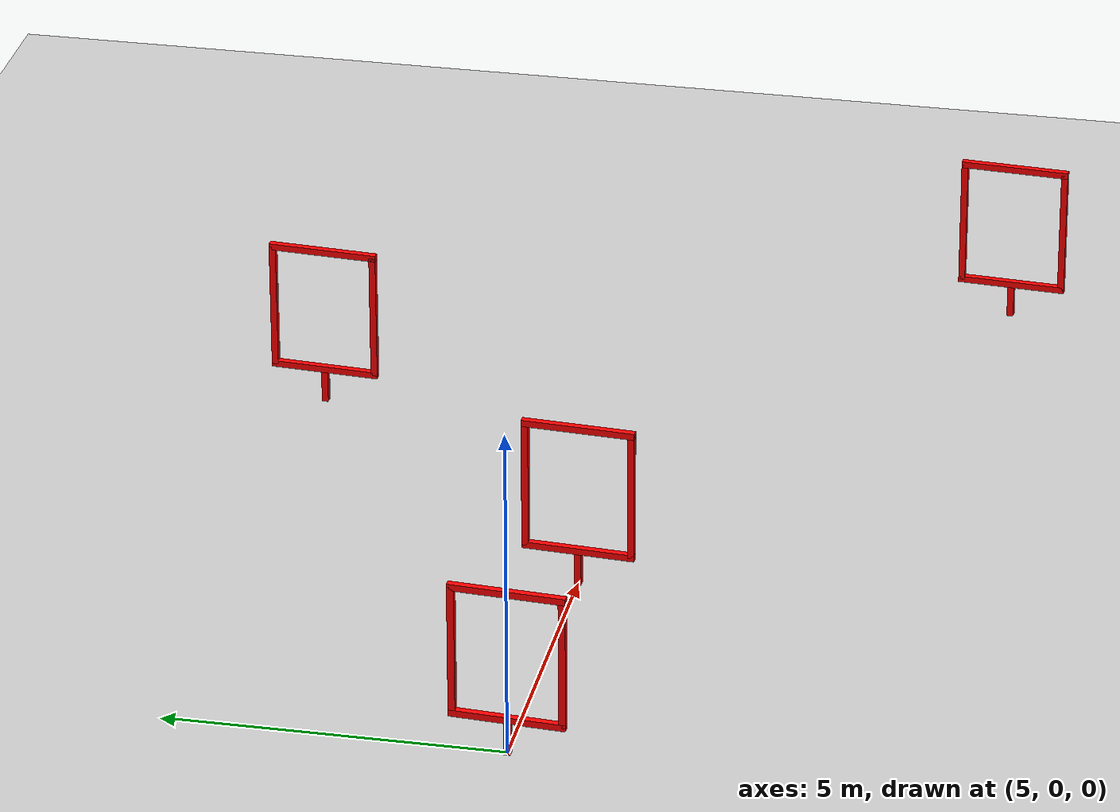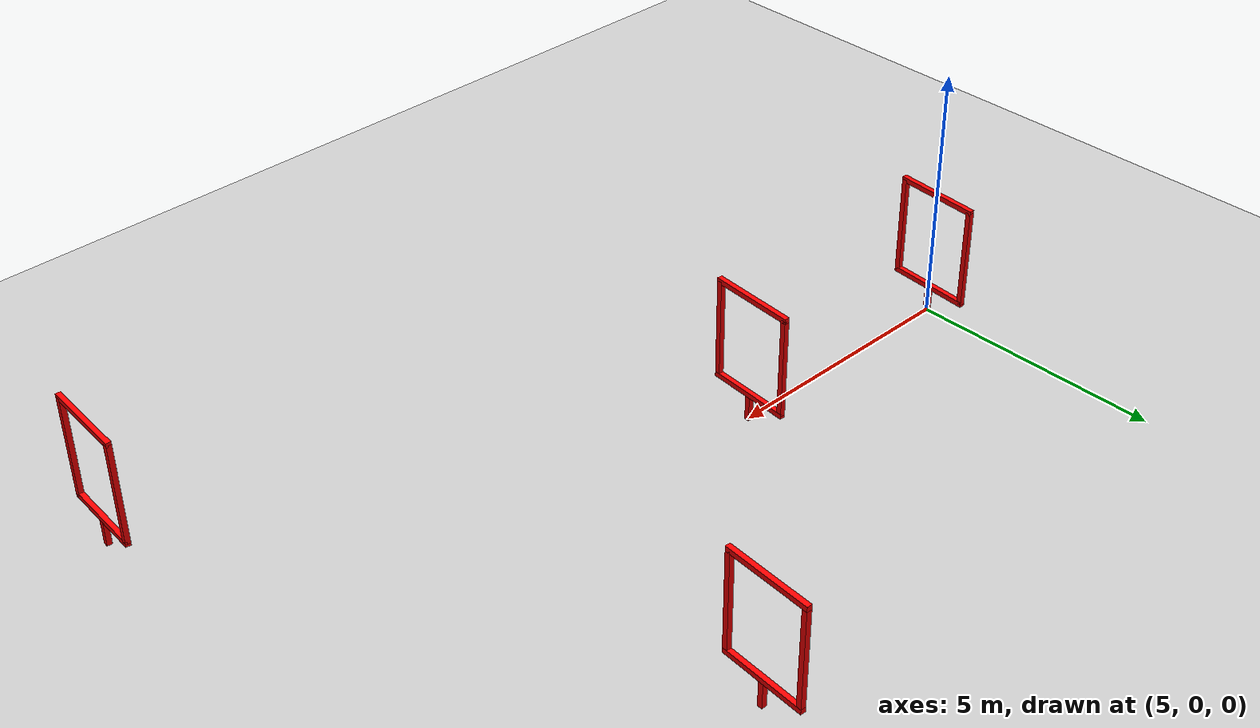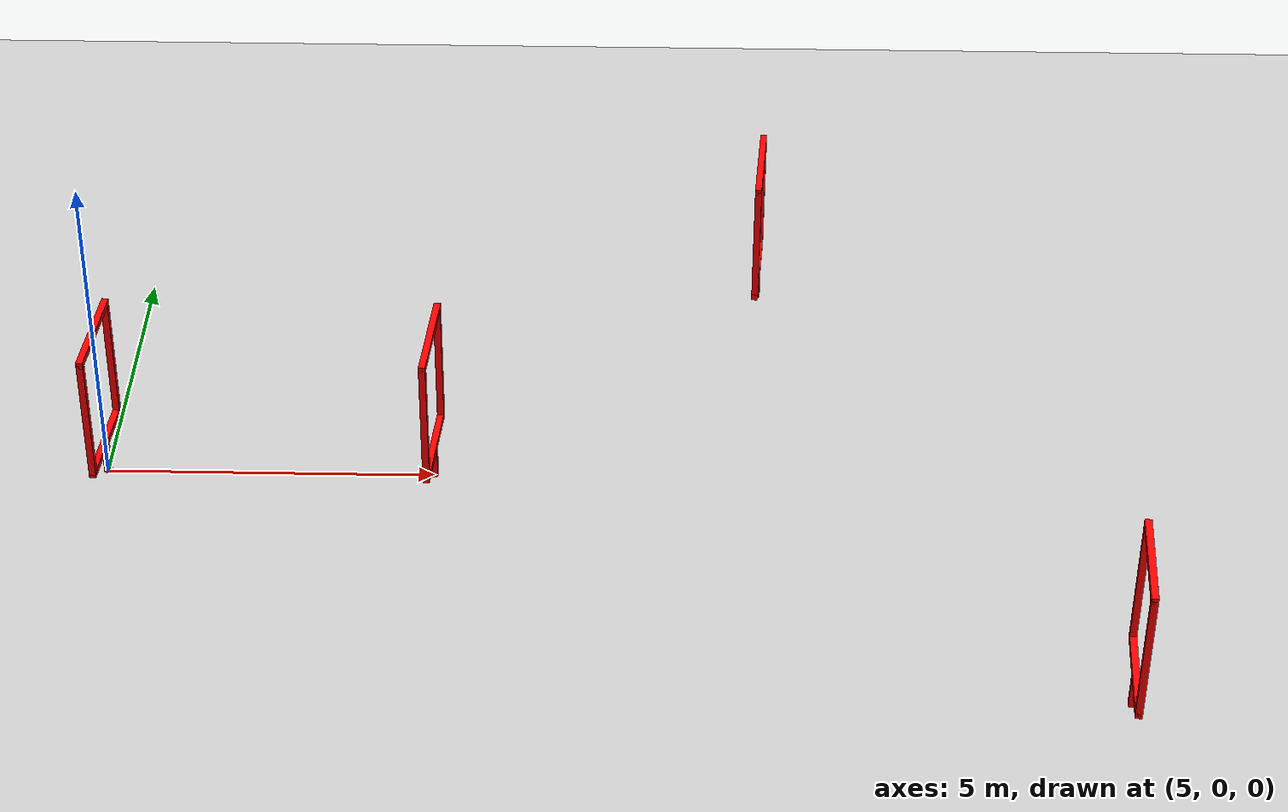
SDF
<?xml version="1.0" encoding="UTF-8"?>
<sdf version="1.9">
  <world name="puertas3"> <physics type="ode">
      <max_step_size>0.004</max_step_size>
      <real_time_factor>1.0</real_time_factor>
      <real_time_update_rate>250</real_time_update_rate>
    </physics>
    <gravity>0 0 -9.8</gravity>
    <magnetic_field>6e-06 2.3e-05 -4.2e-05</magnetic_field>
    <atmosphere type="adiabatic"/>
    <scene>
      <grid>false</grid>
      <ambient>0.4 0.4 0.4 1</ambient>
      <background>0.7 0.7 0.7 1</background>
      <shadows>true</shadows>
    </scene>
    <model name="ground_plane">
      <static>true</static>
      <link name="link">
        <collision name="collision">
          <geometry>
            <plane>
              <normal>0 0 1</normal>
              <size>1 1</size>
            </plane>
          </geometry>
          <surface>
            <friction>
              <ode/>
            </friction>
            <bounce/>
            <contact/>
          </surface>
        </collision>
        <visual name="visual">
          <geometry>
            <plane>
              <normal>0 0 1</normal>
              <size>500 500</size> </plane>
          </geometry>
          <material>
            <ambient>0.8 0.8 0.8 1</ambient>
            <diffuse>0.8 0.8 0.8 1</diffuse>
            <specular>0.8 0.8 0.8 1</specular>
          </material>
        </visual>
        <pose>0 0 0 0 0 0</pose>
      </link>
      <pose>0 0 0 0 0 0</pose>
    </model>
    <light name="sunUTC" type="directional">
      <pose>0 0 500 0 0 0</pose>
      <cast_shadows>true</cast_shadows>
      <intensity>1</intensity>
      <direction>0.001 0.625 -0.78</direction>
      <diffuse>0.904 0.904 0.904 1</diffuse>
      <specular>0.271 0.271 0.271 1</specular>
      <attenuation>
        <range>2000</range>
        <linear>0</linear>
        <constant>1</constant>
        <quadratic>0</quadratic>
      </attenuation>
      <spot>
        <inner_angle>0</inner_angle>
        <outer_angle>0</outer_angle>
        <falloff>0</falloff>
      </spot>
    </light>
    <spherical_coordinates>
      <surface_model>EARTH_WGS84</surface_model>
      <world_frame_orientation>ENU</world_frame_orientation>
      <latitude_deg>47.397971057728974</latitude_deg>
      <longitude_deg> 8.546163739800146</longitude_deg>
      <elevation>0</elevation>
    </spherical_coordinates>

    <include>
      <uri>model://puerta_roja_grande</uri>

      <name>puerta</name>

      <pose>5 0 0 0 0 1.5</pose>
    </include>
        <include>
      <uri>model://puerta_roja_grande</uri>

      <name>puerta2</name>

      <pose> 15 5 0 0 0 1.5</pose>
    </include>
        <include>
      <uri>model://puerta_roja_grande</uri>

      <name>puerta3</name>

      <pose>20 -5 0 0 0 1.5</pose>
    </include>
        <include>
      <uri>model://puerta_roja_grande</uri>

      <name>puerta5</name>

      <pose>10 0 0 0 0 1.5</pose>
    </include>
    </world>
</sdf>

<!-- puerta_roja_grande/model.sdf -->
<sdf version="1.9">
  <model name="puerta_roja_grande">  <static>true</static>
    <link name="soporte"> <pose>0 0 0.25 0 0 0</pose>
      <collision name="col_soporte"><geometry><box><size>0.1 0.1 0.5</size></box></geometry></collision>
      <visual name="vis_soporte"><geometry><box><size>0.1 0.1 0.5</size></box></geometry><material><ambient>1 0 0 1</ambient><diffuse>1 0 0 1</diffuse></material></visual>
    </link>
    <link name="barra_inferior">
      <pose>0 0 0.55 0 0 0</pose>
      <collision name="col_inferior"><geometry><box><size>1.7 0.1 0.1</size></box></geometry></collision>
      <visual name="vis_inferior"><geometry><box><size>1.7 0.1 0.1</size></box></geometry><material><ambient>1 0 0 1</ambient><diffuse>1 0 0 1</diffuse></material></visual>
    </link>
    <link name="barra_superior">
      <pose>0 0 2.55 0 0 0</pose>
      <collision name="col_superior"><geometry><box><size>1.7 0.1 0.1</size></box></geometry></collision>
      <visual name="vis_superior"><geometry><box><size>1.7 0.1 0.1</size></box></geometry><material><ambient>1 0 0 1</ambient><diffuse>1 0 0 1</diffuse></material></visual>
    </link>
    <link name="barra_izquierda">
      <pose>-0.8 0 1.55 0 0 0</pose>
      <collision name="col_izquierda"><geometry><box><size>0.1 0.1 2.0</size></box></geometry></collision>
      <visual name="vis_izquierda"><geometry><box><size>0.1 0.1 2.0</size></box></geometry><material><ambient>1 0 0 1</ambient><diffuse>1 0 0 1</diffuse></material></visual>
    </link>
    <link name="barra_derecha">
      <pose>0.8 0 1.55 0 0 0</pose>
      <collision name="col_derecha"><geometry><box><size>0.1 0.1 2.0</size></box></geometry></collision>
      <visual name="vis_derecha"><geometry><box><size>0.1 0.1 2.0</size></box></geometry><material><ambient>1 0 0 1</ambient><diffuse>1 0 0 1</diffuse></material></visual>
    </link>
    <joint name="joint_soporte_inferior" type="fixed"><parent>soporte</parent><child>barra_inferior</child></joint>
    <joint name="joint_inferior_izquierda" type="fixed"><parent>barra_inferior</parent><child>barra_izquierda</child></joint>
    <joint name="joint_inferior_derecha" type="fixed"><parent>barra_inferior</parent><child>barra_derecha</child></joint>
    <joint name="joint_inferior_superior" type="fixed"><parent>barra_inferior</parent><child>barra_superior</child></joint>
    </model>
</sdf>
